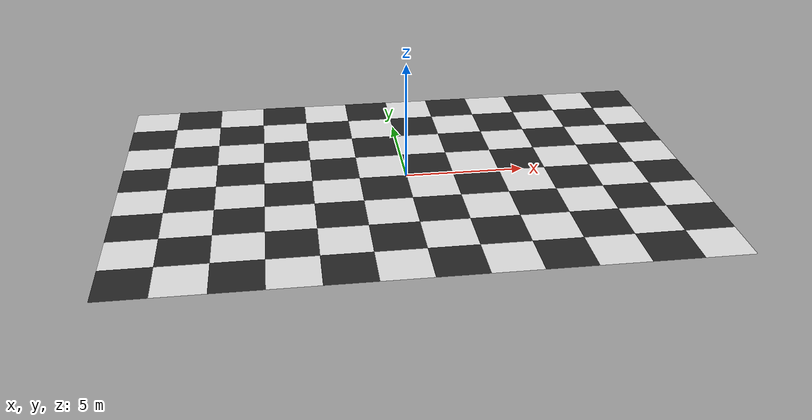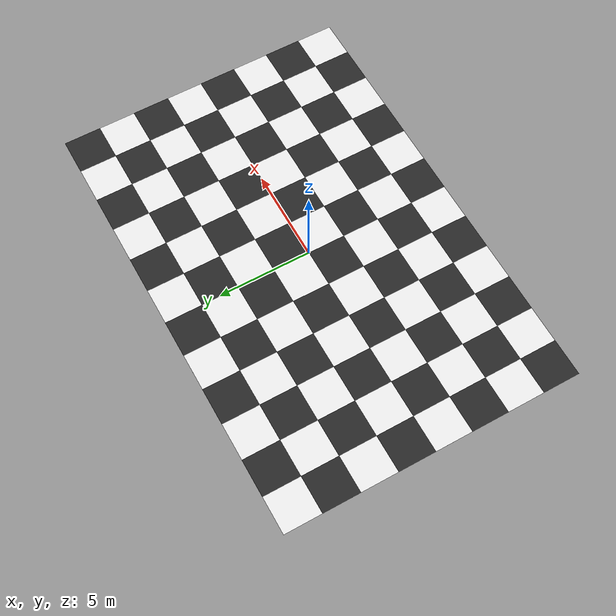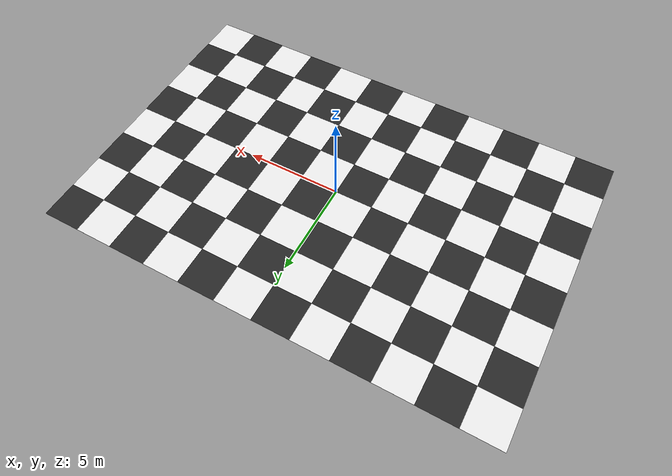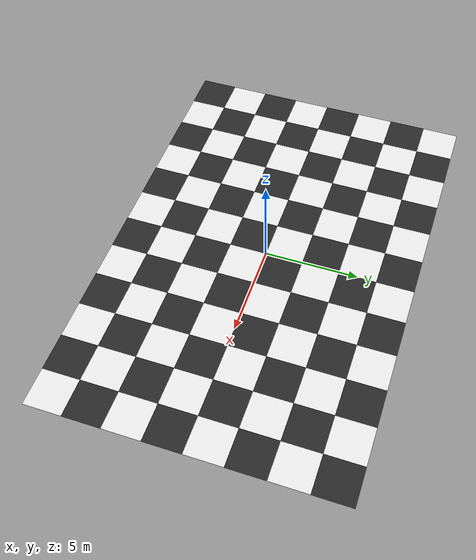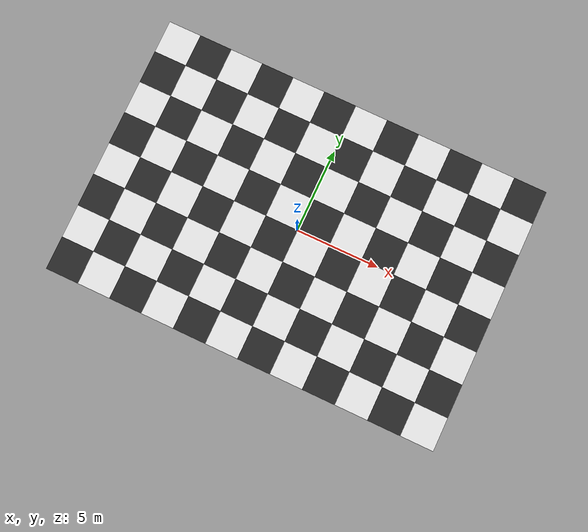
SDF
<sdf version="1.9">
 <world name="drone_hangar_light">
  <model name="ground_plane">
   <static>true</static>
   <link name="link">
    <collision name="collision">
     <geometry><plane><normal>0 0 1</normal><size>24.0 15.0</size></plane></geometry>
    </collision>
   </link>
  </model>
  <model name="floor_tiles">
   <static>true</static>
   <pose>0 0 0.0015 0 0 0</pose>
   <link name="tiles">
    <visual name="t_00_00">
     <pose>-11.0 -7.0 0 0 0 0</pose>
     <geometry><box><size>2 2 0.001</size></box></geometry>
     <material><ambient>0.15 0.15 0.15 1</ambient><diffuse>0.15 0.15 0.15 1</diffuse></material>
    </visual>
    <visual name="t_00_01">
     <pose>-11.0 -5.0 0 0 0 0</pose>
     <geometry><box><size>2 2 0.001</size></box></geometry>
     <material><ambient>0.9 0.9 0.9 1</ambient><diffuse>0.9 0.9 0.9 1</diffuse></material>
    </visual>
    <visual name="t_00_02">
     <pose>-11.0 -3.0 0 0 0 0</pose>
     <geometry><box><size>2 2 0.001</size></box></geometry>
     <material><ambient>0.15 0.15 0.15 1</ambient><diffuse>0.15 0.15 0.15 1</diffuse></material>
    </visual>
    <visual name="t_00_03">
     <pose>-11.0 -1.0 0 0 0 0</pose>
     <geometry><box><size>2 2 0.001</size></box></geometry>
     <material><ambient>0.9 0.9 0.9 1</ambient><diffuse>0.9 0.9 0.9 1</diffuse></material>
    </visual>
    <visual name="t_00_04">
     <pose>-11.0 1.0 0 0 0 0</pose>
     <geometry><box><size>2 2 0.001</size></box></geometry>
     <material><ambient>0.15 0.15 0.15 1</ambient><diffuse>0.15 0.15 0.15 1</diffuse></material>
    </visual>
    <visual name="t_00_05">
     <pose>-11.0 3.0 0 0 0 0</pose>
     <geometry><box><size>2 2 0.001</size></box></geometry>
     <material><ambient>0.9 0.9 0.9 1</ambient><diffuse>0.9 0.9 0.9 1</diffuse></material>
    </visual>
    <visual name="t_00_06">
     <pose>-11.0 5.0 0 0 0 0</pose>
     <geometry><box><size>2 2 0.001</size></box></geometry>
     <material><ambient>0.15 0.15 0.15 1</ambient><diffuse>0.15 0.15 0.15 1</diffuse></material>
    </visual>
    <visual name="t_00_07">
     <pose>-11.0 7.0 0 0 0 0</pose>
     <geometry><box><size>2 2 0.001</size></box></geometry>
     <material><ambient>0.9 0.9 0.9 1</ambient><diffuse>0.9 0.9 0.9 1</diffuse></material>
    </visual>
    <visual name="t_01_00">
     <pose>-9.0 -7.0 0 0 0 0</pose>
     <geometry><box><size>2 2 0.001</size></box></geometry>
     <material><ambient>0.9 0.9 0.9 1</ambient><diffuse>0.9 0.9 0.9 1</diffuse></material>
    </visual>
    <visual name="t_01_01">
     <pose>-9.0 -5.0 0 0 0 0</pose>
     <geometry><box><size>2 2 0.001</size></box></geometry>
     <material><ambient>0.15 0.15 0.15 1</ambient><diffuse>0.15 0.15 0.15 1</diffuse></material>
    </visual>
    <visual name="t_01_02">
     <pose>-9.0 -3.0 0 0 0 0</pose>
     <geometry><box><size>2 2 0.001</size></box></geometry>
     <material><ambient>0.9 0.9 0.9 1</ambient><diffuse>0.9 0.9 0.9 1</diffuse></material>
    </visual>
    <visual name="t_01_03">
     <pose>-9.0 -1.0 0 0 0 0</pose>
     <geometry><box><size>2 2 0.001</size></box></geometry>
     <material><ambient>0.15 0.15 0.15 1</ambient><diffuse>0.15 0.15 0.15 1</diffuse></material>
    </visual>
    <visual name="t_01_04">
     <pose>-9.0 1.0 0 0 0 0</pose>
     <geometry><box><size>2 2 0.001</size></box></geometry>
     <material><ambient>0.9 0.9 0.9 1</ambient><diffuse>0.9 0.9 0.9 1</diffuse></material>
    </visual>
    <visual name="t_01_05">
     <pose>-9.0 3.0 0 0 0 0</pose>
     <geometry><box><size>2 2 0.001</size></box></geometry>
     <material><ambient>0.15 0.15 0.15 1</ambient><diffuse>0.15 0.15 0.15 1</diffuse></material>
    </visual>
    <visual name="t_01_06">
     <pose>-9.0 5.0 0 0 0 0</pose>
     <geometry><box><size>2 2 0.001</size></box></geometry>
     <material><ambient>0.9 0.9 0.9 1</ambient><diffuse>0.9 0.9 0.9 1</diffuse></material>
    </visual>
    <visual name="t_01_07">
     <pose>-9.0 7.0 0 0 0 0</pose>
     <geometry><box><size>2 2 0.001</size></box></geometry>
     <material><ambient>0.15 0.15 0.15 1</ambient><diffuse>0.15 0.15 0.15 1</diffuse></material>
    </visual>
    <visual name="t_02_00">
     <pose>-7.0 -7.0 0 0 0 0</pose>
     <geometry><box><size>2 2 0.001</size></box></geometry>
     <material><ambient>0.15 0.15 0.15 1</ambient><diffuse>0.15 0.15 0.15 1</diffuse></material>
    </visual>
    <visual name="t_02_01">
     <pose>-7.0 -5.0 0 0 0 0</pose>
     <geometry><box><size>2 2 0.001</size></box></geometry>
     <material><ambient>0.9 0.9 0.9 1</ambient><diffuse>0.9 0.9 0.9 1</diffuse></material>
    </visual>
    <visual name="t_02_02">
     <pose>-7.0 -3.0 0 0 0 0</pose>
     <geometry><box><size>2 2 0.001</size></box></geometry>
     <material><ambient>0.15 0.15 0.15 1</ambient><diffuse>0.15 0.15 0.15 1</diffuse></material>
    </visual>
    <visual name="t_02_03">
     <pose>-7.0 -1.0 0 0 0 0</pose>
     <geometry><box><size>2 2 0.001</size></box></geometry>
     <material><ambient>0.9 0.9 0.9 1</ambient><diffuse>0.9 0.9 0.9 1</diffuse></material>
    </visual>
    <visual name="t_02_04">
     <pose>-7.0 1.0 0 0 0 0</pose>
     <geometry><box><size>2 2 0.001</size></box></geometry>
     <material><ambient>0.15 0.15 0.15 1</ambient><diffuse>0.15 0.15 0.15 1</diffuse></material>
    </visual>
    <visual name="t_02_05">
     <pose>-7.0 3.0 0 0 0 0</pose>
     <geometry><box><size>2 2 0.001</size></box></geometry>
     <material><ambient>0.9 0.9 0.9 1</ambient><diffuse>0.9 0.9 0.9 1</diffuse></material>
    </visual>
    <visual name="t_02_06">
     <pose>-7.0 5.0 0 0 0 0</pose>
     <geometry><box><size>2 2 0.001</size></box></geometry>
     <material><ambient>0.15 0.15 0.15 1</ambient><diffuse>0.15 0.15 0.15 1</diffuse></material>
    </visual>
    <visual name="t_02_07">
     <pose>-7.0 7.0 0 0 0 0</pose>
     <geometry><box><size>2 2 0.001</size></box></geometry>
     <material><ambient>0.9 0.9 0.9 1</ambient><diffuse>0.9 0.9 0.9 1</diffuse></material>
    </visual>
    <visual name="t_03_00">
     <pose>-5.0 -7.0 0 0 0 0</pose>
     <geometry><box><size>2 2 0.001</size></box></geometry>
     <material><ambient>0.9 0.9 0.9 1</ambient><diffuse>0.9 0.9 0.9 1</diffuse></material>
    </visual>
    <visual name="t_03_01">
     <pose>-5.0 -5.0 0 0 0 0</pose>
     <geometry><box><size>2 2 0.001</size></box></geometry>
     <material><ambient>0.15 0.15 0.15 1</ambient><diffuse>0.15 0.15 0.15 1</diffuse></material>
    </visual>
    <visual name="t_03_02">
     <pose>-5.0 -3.0 0 0 0 0</pose>
     <geometry><box><size>2 2 0.001</size></box></geometry>
     <material><ambient>0.9 0.9 0.9 1</ambient><diffuse>0.9 0.9 0.9 1</diffuse></material>
    </visual>
    <visual name="t_03_03">
     <pose>-5.0 -1.0 0 0 0 0</pose>
     <geometry><box><size>2 2 0.001</size></box></geometry>
     <material><ambient>0.15 0.15 0.15 1</ambient><diffuse>0.15 0.15 0.15 1</diffuse></material>
    </visual>
    <visual name="t_03_04">
     <pose>-5.0 1.0 0 0 0 0</pose>
     <geometry><box><size>2 2 0.001</size></box></geometry>
     <material><ambient>0.9 0.9 0.9 1</ambient><diffuse>0.9 0.9 0.9 1</diffuse></material>
    </visual>
    <visual name="t_03_05">
     <pose>-5.0 3.0 0 0 0 0</pose>
     <geometry><box><size>2 2 0.001</size></box></geometry>
     <material><ambient>0.15 0.15 0.15 1</ambient><diffuse>0.15 0.15 0.15 1</diffuse></material>
    </visual>
    <visual name="t_03_06">
     <pose>-5.0 5.0 0 0 0 0</pose>
     <geometry><box><size>2 2 0.001</size></box></geometry>
     <material><ambient>0.9 0.9 0.9 1</ambient><diffuse>0.9 0.9 0.9 1</diffuse></material>
    </visual>
    <visual name="t_03_07">
     <pose>-5.0 7.0 0 0 0 0</pose>
     <geometry><box><size>2 2 0.001</size></box></geometry>
     <material><ambient>0.15 0.15 0.15 1</ambient><diffuse>0.15 0.15 0.15 1</diffuse></material>
    </visual>
    <visual name="t_04_00">
     <pose>-3.0 -7.0 0 0 0 0</pose>
     <geometry><box><size>2 2 0.001</size></box></geometry>
     <material><ambient>0.15 0.15 0.15 1</ambient><diffuse>0.15 0.15 0.15 1</diffuse></material>
    </visual>
    <visual name="t_04_01">
     <pose>-3.0 -5.0 0 0 0 0</pose>
     <geometry><box><size>2 2 0.001</size></box></geometry>
     <material><ambient>0.9 0.9 0.9 1</ambient><diffuse>0.9 0.9 0.9 1</diffuse></material>
    </visual>
    <visual name="t_04_02">
     <pose>-3.0 -3.0 0 0 0 0</pose>
     <geometry><box><size>2 2 0.001</size></box></geometry>
     <material><ambient>0.15 0.15 0.15 1</ambient><diffuse>0.15 0.15 0.15 1</diffuse></material>
    </visual>
    <visual name="t_04_03">
     <pose>-3.0 -1.0 0 0 0 0</pose>
     <geometry><box><size>2 2 0.001</size></box></geometry>
     <material><ambient>0.9 0.9 0.9 1</ambient><diffuse>0.9 0.9 0.9 1</diffuse></material>
    </visual>
    <visual name="t_04_04">
     <pose>-3.0 1.0 0 0 0 0</pose>
     <geometry><box><size>2 2 0.001</size></box></geometry>
     <material><ambient>0.15 0.15 0.15 1</ambient><diffuse>0.15 0.15 0.15 1</diffuse></material>
    </visual>
    <visual name="t_04_05">
     <pose>-3.0 3.0 0 0 0 0</pose>
     <geometry><box><size>2 2 0.001</size></box></geometry>
     <material><ambient>0.9 0.9 0.9 1</ambient><diffuse>0.9 0.9 0.9 1</diffuse></material>
    </visual>
    <visual name="t_04_06">
     <pose>-3.0 5.0 0 0 0 0</pose>
     <geometry><box><size>2 2 0.001</size></box></geometry>
     <material><ambient>0.15 0.15 0.15 1</ambient><diffuse>0.15 0.15 0.15 1</diffuse></material>
    </visual>
    <visual name="t_04_07">
     <pose>-3.0 7.0 0 0 0 0</pose>
     <geometry><box><size>2 2 0.001</size></box></geometry>
     <material><ambient>0.9 0.9 0.9 1</ambient><diffuse>0.9 0.9 0.9 1</diffuse></material>
    </visual>
    <visual name="t_05_00">
     <pose>-1.0 -7.0 0 0 0 0</pose>
     <geometry><box><size>2 2 0.001</size></box></geometry>
     <material><ambient>0.9 0.9 0.9 1</ambient><diffuse>0.9 0.9 0.9 1</diffuse></material>
    </visual>
    <visual name="t_05_01">
     <pose>-1.0 -5.0 0 0 0 0</pose>
     <geometry><box><size>2 2 0.001</size></box></geometry>
     <material><ambient>0.15 0.15 0.15 1</ambient><diffuse>0.15 0.15 0.15 1</diffuse></material>
    </visual>
    <visual name="t_05_02">
     <pose>-1.0 -3.0 0 0 0 0</pose>
     <geometry><box><size>2 2 0.001</size></box></geometry>
     <material><ambient>0.9 0.9 0.9 1</ambient><diffuse>0.9 0.9 0.9 1</diffuse></material>
    </visual>
    <visual name="t_05_03">
     <pose>-1.0 -1.0 0 0 0 0</pose>
     <geometry><box><size>2 2 0.001</size></box></geometry>
     <material><ambient>0.15 0.15 0.15 1</ambient><diffuse>0.15 0.15 0.15 1</diffuse></material>
    </visual>
    <visual name="t_05_04">
     <pose>-1.0 1.0 0 0 0 0</pose>
     <geometry><box><size>2 2 0.001</size></box></geometry>
     <material><ambient>0.9 0.9 0.9 1</ambient><diffuse>0.9 0.9 0.9 1</diffuse></material>
    </visual>
    <visual name="t_05_05">
     <pose>-1.0 3.0 0 0 0 0</pose>
     <geometry><box><size>2 2 0.001</size></box></geometry>
     <material><ambient>0.15 0.15 0.15 1</ambient><diffuse>0.15 0.15 0.15 1</diffuse></material>
    </visual>
    <visual name="t_05_06">
     <pose>-1.0 5.0 0 0 0 0</pose>
     <geometry><box><size>2 2 0.001</size></box></geometry>
     <material><ambient>0.9 0.9 0.9 1</ambient><diffuse>0.9 0.9 0.9 1</diffuse></material>
    </visual>
    <visual name="t_05_07">
     <pose>-1.0 7.0 0 0 0 0</pose>
     <geometry><box><size>2 2 0.001</size></box></geometry>
     <material><ambient>0.15 0.15 0.15 1</ambient><diffuse>0.15 0.15 0.15 1</diffuse></material>
    </visual>
    <visual name="t_06_00">
     <pose>1.0 -7.0 0 0 0 0</pose>
     <geometry><box><size>2 2 0.001</size></box></geometry>
     <material><ambient>0.15 0.15 0.15 1</ambient><diffuse>0.15 0.15 0.15 1</diffuse></material>
    </visual>
    <visual name="t_06_01">
     <pose>1.0 -5.0 0 0 0 0</pose>
     <geometry><box><size>2 2 0.001</size></box></geometry>
     <material><ambient>0.9 0.9 0.9 1</ambient><diffuse>0.9 0.9 0.9 1</diffuse></material>
    </visual>
    <visual name="t_06_02">
     <pose>1.0 -3.0 0 0 0 0</pose>
     <geometry><box><size>2 2 0.001</size></box></geometry>
     <material><ambient>0.15 0.15 0.15 1</ambient><diffuse>0.15 0.15 0.15 1</diffuse></material>
    </visual>
    <visual name="t_06_03">
     <pose>1.0 -1.0 0 0 0 0</pose>
     <geometry><box><size>2 2 0.001</size></box></geometry>
     <material><ambient>0.9 0.9 0.9 1</ambient><diffuse>0.9 0.9 0.9 1</diffuse></material>
    </visual>
    <visual name="t_06_04">
     <pose>1.0 1.0 0 0 0 0</pose>
     <geometry><box><size>2 2 0.001</size></box></geometry>
     <material><ambient>0.15 0.15 0.15 1</ambient><diffuse>0.15 0.15 0.15 1</diffuse></material>
    </visual>
    <visual name="t_06_05">
     <pose>1.0 3.0 0 0 0 0</pose>
     <geometry><box><size>2 2 0.001</size></box></geometry>
     <material><ambient>0.9 0.9 0.9 1</ambient><diffuse>0.9 0.9 0.9 1</diffuse></material>
    </visual>
    <visual name="t_06_06">
     <pose>1.0 5.0 0 0 0 0</pose>
     <geometry><box><size>2 2 0.001</size></box></geometry>
     <material><ambient>0.15 0.15 0.15 1</ambient><diffuse>0.15 0.15 0.15 1</diffuse></material>
    </visual>
    <visual name="t_06_07">
     <pose>1.0 7.0 0 0 0 0</pose>
     <geometry><box><size>2 2 0.001</size></box></geometry>
     <material><ambient>0.9 0.9 0.9 1</ambient><diffuse>0.9 0.9 0.9 1</diffuse></material>
    </visual>
    <visual name="t_07_00">
     <pose>3.0 -7.0 0 0 0 0</pose>
     <geometry><box><size>2 2 0.001</size></box></geometry>
     <material><ambient>0.9 0.9 0.9 1</ambient><diffuse>0.9 0.9 0.9 1</diffuse></material>
    </visual>
    <visual name="t_07_01">
     <pose>3.0 -5.0 0 0 0 0</pose>
     <geometry><box><size>2 2 0.001</size></box></geometry>
     <material><ambient>0.15 0.15 0.15 1</ambient><diffuse>0.15 0.15 0.15 1</diffuse></material>
    </visual>
    <visual name="t_07_02">
     <pose>3.0 -3.0 0 0 0 0</pose>
     <geometry><box><size>2 2 0.001</size></box></geometry>
     <material><ambient>0.9 0.9 0.9 1</ambient><diffuse>0.9 0.9 0.9 1</diffuse></material>
    </visual>
    <visual name="t_07_03">
     <pose>3.0 -1.0 0 0 0 0</pose>
     <geometry><box><size>2 2 0.001</size></box></geometry>
     <material><ambient>0.15 0.15 0.15 1</ambient><diffuse>0.15 0.15 0.15 1</diffuse></material>
    </visual>
    <visual name="t_07_04">
     <pose>3.0 1.0 0 0 0 0</pose>
     <geometry><box><size>2 2 0.001</size></box></geometry>
     <material><ambient>0.9 0.9 0.9 1</ambient><diffuse>0.9 0.9 0.9 1</diffuse></material>
    </visual>
    <visual name="t_07_05">
     <pose>3.0 3.0 0 0 0 0</pose>
     <geometry><box><size>2 2 0.001</size></box></geometry>
     <material><ambient>0.15 0.15 0.15 1</ambient><diffuse>0.15 0.15 0.15 1</diffuse></material>
    </visual>
    <visual name="t_07_06">
     <pose>3.0 5.0 0 0 0 0</pose>
     <geometry><box><size>2 2 0.001</size></box></geometry>
     <material><ambient>0.9 0.9 0.9 1</ambient><diffuse>0.9 0.9 0.9 1</diffuse></material>
    </visual>
    <visual name="t_07_07">
     <pose>3.0 7.0 0 0 0 0</pose>
     <geometry><box><size>2 2 0.001</size></box></geometry>
     <material><ambient>0.15 0.15 0.15 1</ambient><diffuse>0.15 0.15 0.15 1</diffuse></material>
    </visual>
    <visual name="t_08_00">
     <pose>5.0 -7.0 0 0 0 0</pose>
     <geometry><box><size>2 2 0.001</size></box></geometry>
     <material><ambient>0.15 0.15 0.15 1</ambient><diffuse>0.15 0.15 0.15 1</diffuse></material>
    </visual>
    <visual name="t_08_01">
     <pose>5.0 -5.0 0 0 0 0</pose>
     <geometry><box><size>2 2 0.001</size></box></geometry>
     <material><ambient>0.9 0.9 0.9 1</ambient><diffuse>0.9 0.9 0.9 1</diffuse></material>
    </visual>
    <visual name="t_08_02">
     <pose>5.0 -3.0 0 0 0 0</pose>
     <geometry><box><size>2 2 0.001</size></box></geometry>
     <material><ambient>0.15 0.15 0.15 1</ambient><diffuse>0.15 0.15 0.15 1</diffuse></material>
    </visual>
    <visual name="t_08_03">
     <pose>5.0 -1.0 0 0 0 0</pose>
     <geometry><box><size>2 2 0.001</size></box></geometry>
     <material><ambient>0.9 0.9 0.9 1</ambient><diffuse>0.9 0.9 0.9 1</diffuse></material>
    </visual>
    <visual name="t_08_04">
     <pose>5.0 1.0 0 0 0 0</pose>
     <geometry><box><size>2 2 0.001</size></box></geometry>
     <material><ambient>0.15 0.15 0.15 1</ambient><diffuse>0.15 0.15 0.15 1</diffuse></material>
    </visual>
    <visual name="t_08_05">
     <pose>5.0 3.0 0 0 0 0</pose>
     <geometry><box><size>2 2 0.001</size></box></geometry>
     <material><ambient>0.9 0.9 0.9 1</ambient><diffuse>0.9 0.9 0.9 1</diffuse></material>
    </visual>
    <visual name="t_08_06">
     <pose>5.0 5.0 0 0 0 0</pose>
     <geometry><box><size>2 2 0.001</size></box></geometry>
     <material><ambient>0.15 0.15 0.15 1</ambient><diffuse>0.15 0.15 0.15 1</diffuse></material>
    </visual>
    <visual name="t_08_07">
     <pose>5.0 7.0 0 0 0 0</pose>
     <geometry><box><size>2 2 0.001</size></box></geometry>
     <material><ambient>0.9 0.9 0.9 1</ambient><diffuse>0.9 0.9 0.9 1</diffuse></material>
    </visual>
    <visual name="t_09_00">
     <pose>7.0 -7.0 0 0 0 0</pose>
     <geometry><box><size>2 2 0.001</size></box></geometry>
     <material><ambient>0.9 0.9 0.9 1</ambient><diffuse>0.9 0.9 0.9 1</diffuse></material>
    </visual>
    <visual name="t_09_01">
     <pose>7.0 -5.0 0 0 0 0</pose>
     <geometry><box><size>2 2 0.001</size></box></geometry>
     <material><ambient>0.15 0.15 0.15 1</ambient><diffuse>0.15 0.15 0.15 1</diffuse></material>
    </visual>
    <visual name="t_09_02">
     <pose>7.0 -3.0 0 0 0 0</pose>
     <geometry><box><size>2 2 0.001</size></box></geometry>
     <material><ambient>0.9 0.9 0.9 1</ambient><diffuse>0.9 0.9 0.9 1</diffuse></material>
    </visual>
    <visual name="t_09_03">
     <pose>7.0 -1.0 0 0 0 0</pose>
     <geometry><box><size>2 2 0.001</size></box></geometry>
     <material><ambient>0.15 0.15 0.15 1</ambient><diffuse>0.15 0.15 0.15 1</diffuse></material>
    </visual>
    <visual name="t_09_04">
     <pose>7.0 1.0 0 0 0 0</pose>
     <geometry><box><size>2 2 0.001</size></box></geometry>
     <material><ambient>0.9 0.9 0.9 1</ambient><diffuse>0.9 0.9 0.9 1</diffuse></material>
    </visual>
    <visual name="t_09_05">
     <pose>7.0 3.0 0 0 0 0</pose>
     <geometry><box><size>2 2 0.001</size></box></geometry>
     <material><ambient>0.15 0.15 0.15 1</ambient><diffuse>0.15 0.15 0.15 1</diffuse></material>
    </visual>
    <visual name="t_09_06">
     <pose>7.0 5.0 0 0 0 0</pose>
     <geometry><box><size>2 2 0.001</size></box></geometry>
     <material><ambient>0.9 0.9 0.9 1</ambient><diffuse>0.9 0.9 0.9 1</diffuse></material>
    </visual>
    <visual name="t_09_07">
     <pose>7.0 7.0 0 0 0 0</pose>
     <geometry><box><size>2 2 0.001</size></box></geometry>
     <material><ambient>0.15 0.15 0.15 1</ambient><diffuse>0.15 0.15 0.15 1</diffuse></material>
    </visual>
    <visual name="t_10_00">
     <pose>9.0 -7.0 0 0 0 0</pose>
     <geometry><box><size>2 2 0.001</size></box></geometry>
     <material><ambient>0.15 0.15 0.15 1</ambient><diffuse>0.15 0.15 0.15 1</diffuse></material>
    </visual>
    <visual name="t_10_01">
     <pose>9.0 -5.0 0 0 0 0</pose>
     <geometry><box><size>2 2 0.001</size></box></geometry>
     <material><ambient>0.9 0.9 0.9 1</ambient><diffuse>0.9 0.9 0.9 1</diffuse></material>
    </visual>
    <visual name="t_10_02">
     <pose>9.0 -3.0 0 0 0 0</pose>
     <geometry><box><size>2 2 0.001</size></box></geometry>
     <material><ambient>0.15 0.15 0.15 1</ambient><diffuse>0.15 0.15 0.15 1</diffuse></material>
    </visual>
    <visual name="t_10_03">
     <pose>9.0 -1.0 0 0 0 0</pose>
     <geometry><box><size>2 2 0.001</size></box></geometry>
     <material><ambient>0.9 0.9 0.9 1</ambient><diffuse>0.9 0.9 0.9 1</diffuse></material>
    </visual>
    <visual name="t_10_04">
     <pose>9.0 1.0 0 0 0 0</pose>
     <geometry><box><size>2 2 0.001</size></box></geometry>
     <material><ambient>0.15 0.15 0.15 1</ambient><diffuse>0.15 0.15 0.15 1</diffuse></material>
    </visual>
    <visual name="t_10_05">
     <pose>9.0 3.0 0 0 0 0</pose>
     <geometry><box><size>2 2 0.001</size></box></geometry>
     <material><ambient>0.9 0.9 0.9 1</ambient><diffuse>0.9 0.9 0.9 1</diffuse></material>
    </visual>
    <visual name="t_10_06">
     <pose>9.0 5.0 0 0 0 0</pose>
     <geometry><box><size>2 2 0.001</size></box></geometry>
     <material><ambient>0.15 0.15 0.15 1</ambient><diffuse>0.15 0.15 0.15 1</diffuse></material>
    </visual>
    <visual name="t_10_07">
     <pose>9.0 7.0 0 0 0 0</pose>
     <geometry><box><size>2 2 0.001</size></box></geometry>
     <material><ambient>0.9 0.9 0.9 1</ambient><diffuse>0.9 0.9 0.9 1</diffuse></material>
    </visual>
    <visual name="t_11_00">
     <pose>11.0 -7.0 0 0 0 0</pose>
     <geometry><box><size>2 2 0.001</size></box></geometry>
     <material><ambient>0.9 0.9 0.9 1</ambient><diffuse>0.9 0.9 0.9 1</diffuse></material>
    </visual>
    <visual name="t_11_01">
     <pose>11.0 -5.0 0 0 0 0</pose>
     <geometry><box><size>2 2 0.001</size></box></geometry>
     <material><ambient>0.15 0.15 0.15 1</ambient><diffuse>0.15 0.15 0.15 1</diffuse></material>
    </visual>
    <visual name="t_11_02">
     <pose>11.0 -3.0 0 0 0 0</pose>
     <geometry><box><size>2 2 0.001</size></box></geometry>
     <material><ambient>0.9 0.9 0.9 1</ambient><diffuse>0.9 0.9 0.9 1</diffuse></material>
    </visual>
    <visual name="t_11_03">
     <pose>11.0 -1.0 0 0 0 0</pose>
     <geometry><box><size>2 2 0.001</size></box></geometry>
     <material><ambient>0.15 0.15 0.15 1</ambient><diffuse>0.15 0.15 0.15 1</diffuse></material>
    </visual>
    <visual name="t_11_04">
     <pose>11.0 1.0 0 0 0 0</pose>
     <geometry><box><size>2 2 0.001</size></box></geometry>
     <material><ambient>0.9 0.9 0.9 1</ambient><diffuse>0.9 0.9 0.9 1</diffuse></material>
    </visual>
    <visual name="t_11_05">
     <pose>11.0 3.0 0 0 0 0</pose>
     <geometry><box><size>2 2 0.001</size></box></geometry>
     <material><ambient>0.15 0.15 0.15 1</ambient><diffuse>0.15 0.15 0.15 1</diffuse></material>
    </visual>
    <visual name="t_11_06">
     <pose>11.0 5.0 0 0 0 0</pose>
     <geometry><box><size>2 2 0.001</size></box></geometry>
     <material><ambient>0.9 0.9 0.9 1</ambient><diffuse>0.9 0.9 0.9 1</diffuse></material>
    </visual>
    <visual name="t_11_07">
     <pose>11.0 7.0 0 0 0 0</pose>
     <geometry><box><size>2 2 0.001</size></box></geometry>
     <material><ambient>0.15 0.15 0.15 1</ambient><diffuse>0.15 0.15 0.15 1</diffuse></material>
    </visual>
   </link>
  </model>
 </world>
</sdf>
